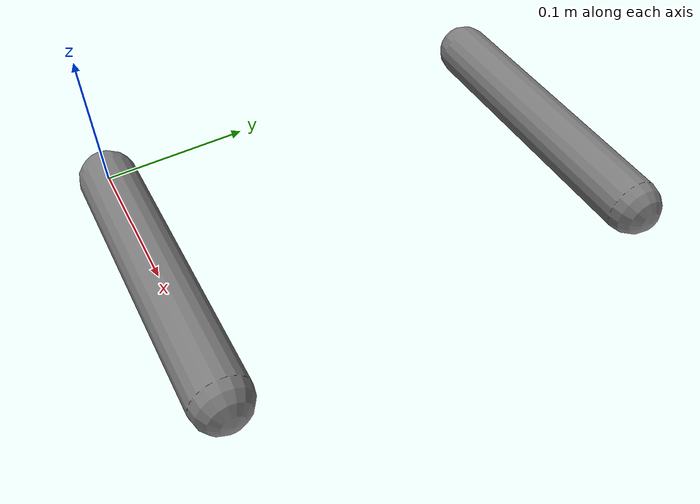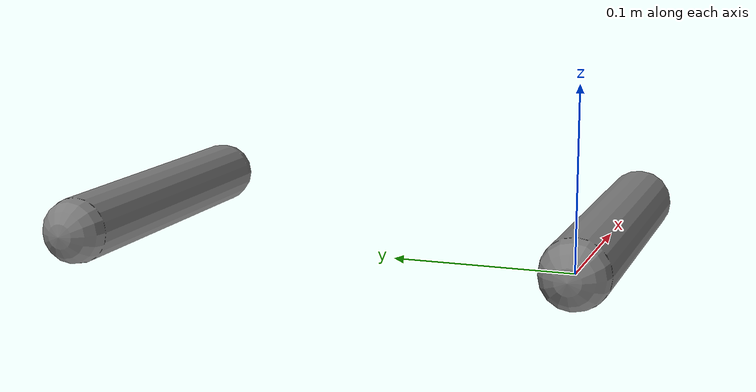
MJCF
<mujoco model="weld_pair">
  <worldbody>
    <body name="arm1" pos="0 0 0">
      <joint name="j1" type="hinge" axis="0 1 0"/>
      <inertial mass="0.5" pos="0.1 0 0" diaginertia="0.01 0.01 0.01"/>
      <geom type="capsule" fromto="0 0 0 0.2 0 0" size="0.02" contype="0" conaffinity="0"/>
    </body>
    <body name="arm2" pos="0 0.3 0">
      <joint name="j2" type="hinge" axis="0 1 0"/>
      <inertial mass="0.5" pos="0.1 0 0" diaginertia="0.01 0.01 0.01"/>
      <geom type="capsule" fromto="0 0 0 0.2 0 0" size="0.02" contype="0" conaffinity="0"/>
    </body>
  </worldbody>
  <equality>
    <weld body1="arm1" body2="arm2" relpose="0 -0.3 0 1 0 0 0" solimp="0.95 0.99 0.001" solref="0.005 1"/>
  </equality>
</mujoco>
